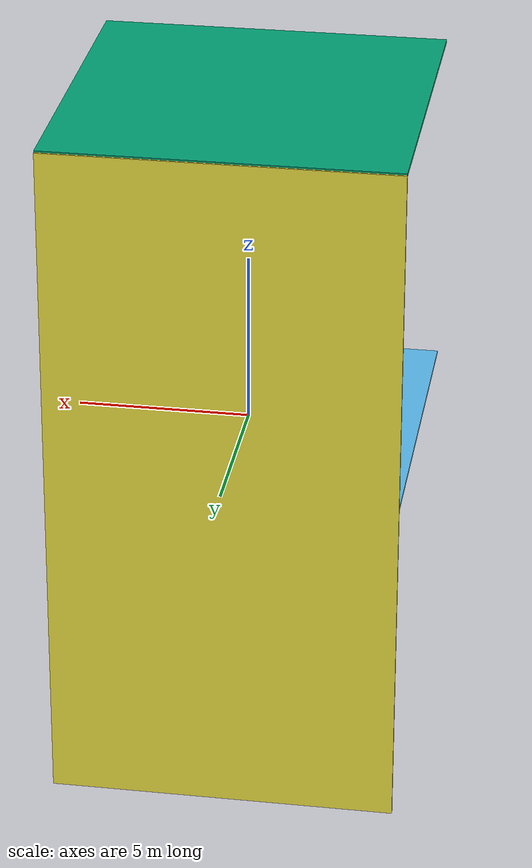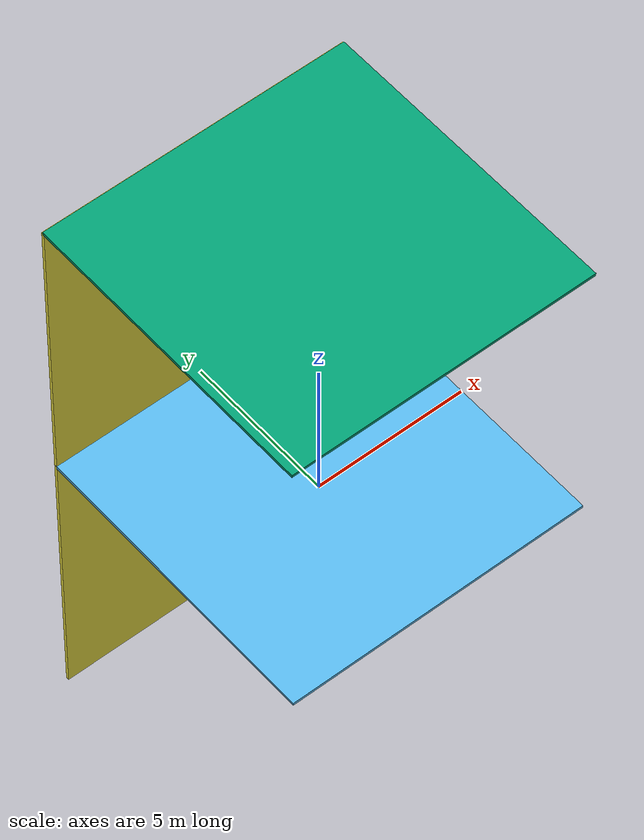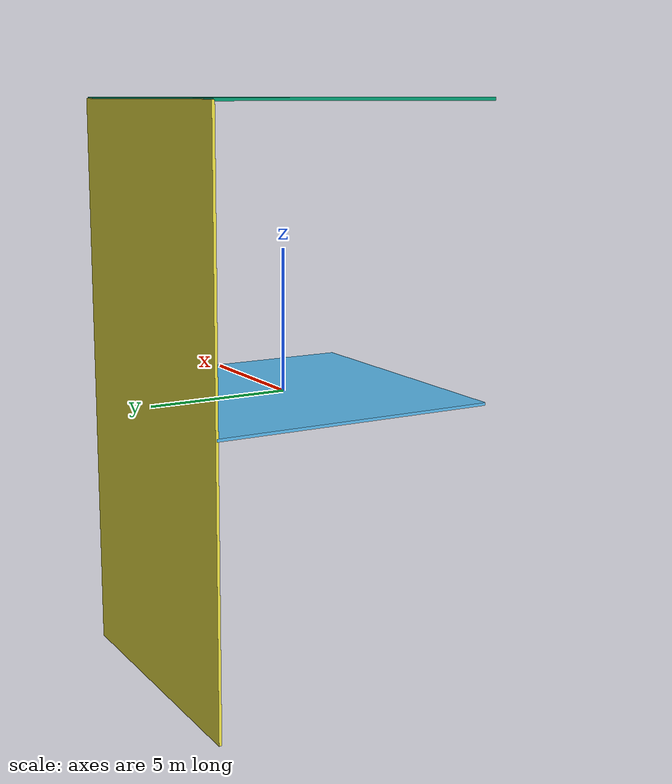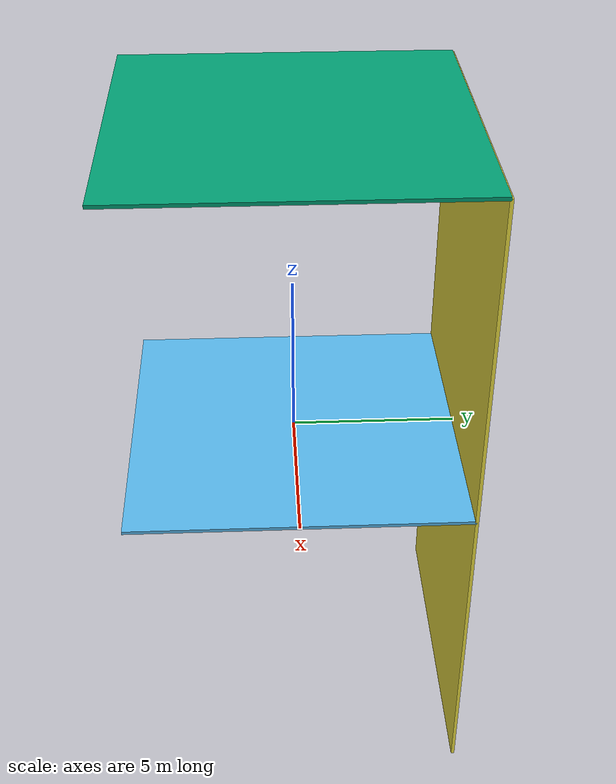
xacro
<?xml version="1.0"?>
<robot xmlns:xacro="http://www.ros.org/wiki/xacro" name="projector_test">

<link name="world"/>

<link name="link_wall1">
  <visual>
    <geometry>
      <box size="10 10 0.1" />
    </geometry>
  </visual>
  <inertial>
    <mass value="1.0"/>
    <inertia ixx="1.0" ixy="0.0" ixz="0.0" iyy="1.0" iyz="0.0" izz="1.0" />
  </inertial>
</link>
<joint name="joint_wall1" type="fixed">
  <origin xyz="0 0 0.0" rpy="0 0 0" />
  <parent link="world" />
  <child link="link_wall1" />
</joint>

<link name="link_wall2">
  <visual>
    <geometry>
      <box size="10 10 0.1" />
    </geometry>
  </visual>
  <inertial>
    <mass value="1.0"/>
    <inertia ixx="1.0" ixy="0.0" ixz="0.0" iyy="1.0" iyz="0.0" izz="1.0" />
  </inertial>
</link>
<joint name="joint_wall2" type="fixed">
  <origin xyz="0 0 10.0" rpy="0 0 0" />
  <parent link="world" />
  <child link="link_wall2" />
</joint>

<link name="link_wall3">
  <visual>
    <geometry>
      <box size="10.0 0.1 20.0" />
    </geometry>
  </visual>
  <inertial>
    <mass value="1.0"/>
    <inertia ixx="1.0" ixy="0.0" ixz="0.0" iyy="1.0" iyz="0.0" izz="1.0" />
  </inertial>
</link>
<joint name="joint_wall3" type="fixed">
  <origin xyz="0 5.0 0.0" rpy="0 0 0" />
  <parent link="world" />
  <child link="link_wall3" />
</joint>

<link name="link_projector">
  <visual>
    <geometry>
      <cylinder length="0.2" radius="0.05" />
    </geometry>
  </visual>
  <inertial>
    <mass value="1.0"/>
    <inertia ixx="1.0" ixy="0.0" ixz="0.0" iyy="1.0" iyz="0.0" izz="1.0" />
  </inertial>
</link>

<joint name="joint_projector" type="fixed">
  <origin xyz="0 0 2.0" rpy="-0.0 0 0" />
  <parent link="world" />
  <child link="link_projector" />
</joint>

<gazebo reference="link_projector">
  <!--sensor type="projector" name="projector_tester"-->
  <projector name="projector_test1">
    <pose>0 0 0 -0.88 0 0</pose>
    <!-- this isn't getting loaded properly -->
    <!-- this doesn't work even with setting GAZEBO_RESOURCE_PATH -->
    <texture>stereo_projection_pattern_high_res_red.png</texture>
    <fov>0.95</fov>
    <near_clip>0.1</near_clip>
    <far_clip>10.0</far_clip>
  </projector>
</gazebo>

<gazebo if="false">
  <!-- Not sure if this is necessary, didn't need it elsewhere though some
      projector things were screwy -->
    <plugin name="projector_test_controller" filename="libgazebo_ros_projector.so">
      <projector>projector_test1</projector>
      <alwaysOn>true</alwaysOn>
      <updateRate>5.0</updateRate>
      <textureName>$(find projector_test/urdf/test_pattern.png</textureName>
      <!-- what is the filter for? -->
      <filterTextureName>$(find projector_test)/urdf/test_pattern.png</filterTextureName>
      <textureTopicName>projector_test/image</textureTopicName>
      <projectorTopicName>projector_test/projector</projectorTopicName>
    </plugin>
    <!--/sensor-->
  </gazebo>
</robot>
